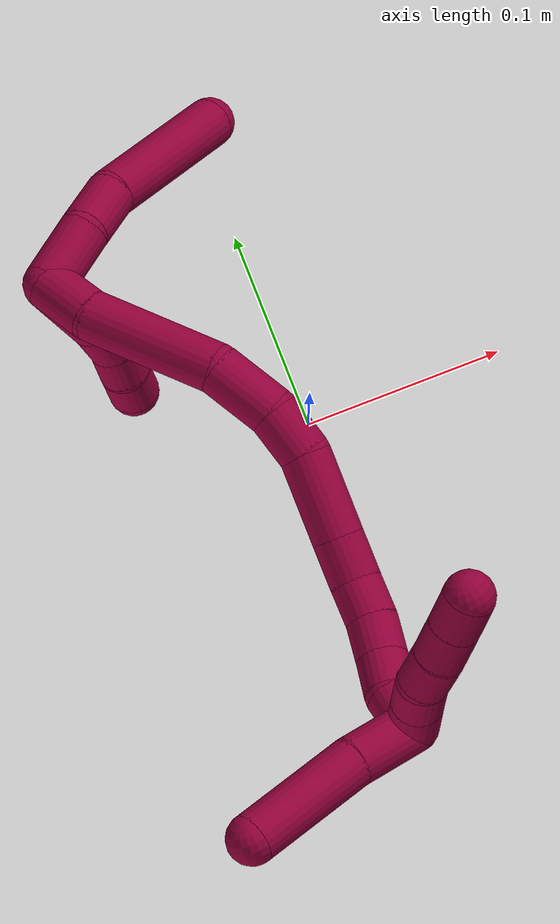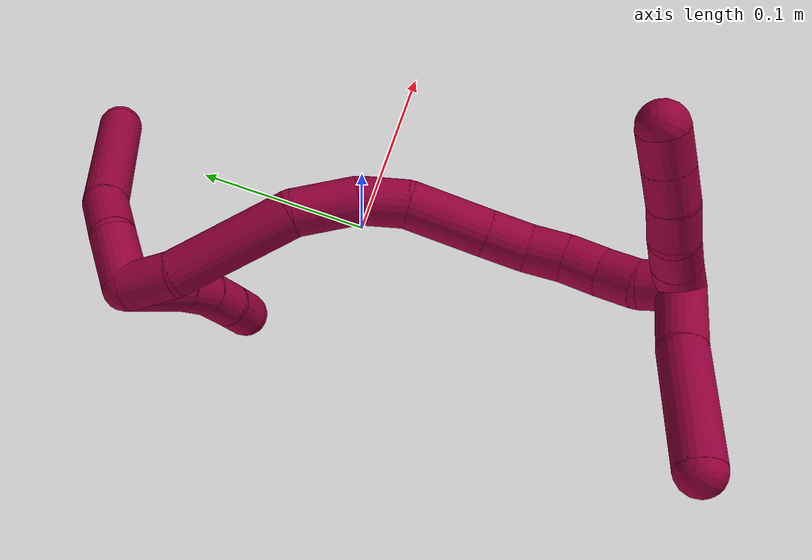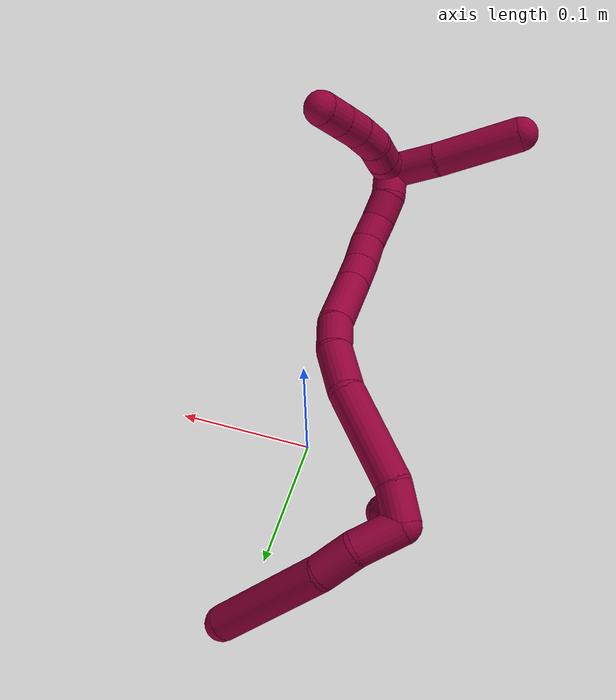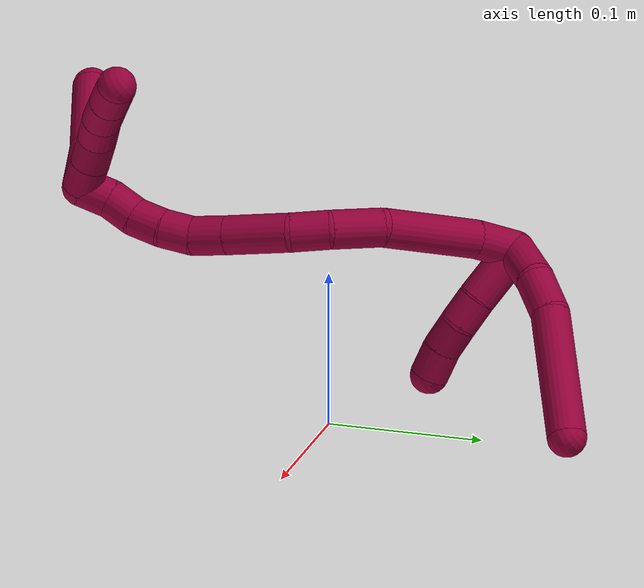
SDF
<sdf version="1.7">
 <world name="default">
  <model name="8">
   <static>0</static>
   <link name="8">
    <collision name="collision-cylinder-e_1_2_8">
     <pose>0.01397 0.008095 0.004612 -1.05296 0.982653 -0.603024</pose>
     <geometry><cylinder><radius>0.0125</radius><length>0.033583</length></cylinder></geometry>
     <surface>
      <friction><ode><mu>1.16</mu><mu2>1.16</mu2><slip1>0</slip1><slip2>0</slip2></ode></friction>
      <contact><ode><kp>1e+06</kp><kd>1</kd><max_vel>0</max_vel><min_depth>0.001</min_depth></ode></contact>
     </surface>
    </collision>
    <visual name="visual-cylinder-e_1_2_8">
     <pose>0.01397 0.008095 0.004612 -1.05296 0.982653 -0.603024</pose>
     <geometry><cylinder><radius>0.0125</radius><length>0.033583</length></cylinder></geometry>
     <material><ambient>0.584314 0 0.227451 1</ambient></material>
    </visual>
    <collision name="collision-cylinder-e_2_8_9">
     <pose>0.038323 0.025762 0.010429 -1.44544 0.822053 -0.733928</pose>
     <geometry><cylinder><radius>0.0125</radius><length>0.028347</length></cylinder></geometry>
     <surface>
      <friction><ode><mu>1.16</mu><mu2>1.16</mu2><slip1>0</slip1><slip2>0</slip2></ode></friction>
      <contact><ode><kp>1e+06</kp><kd>1</kd><max_vel>0</max_vel><min_depth>0.001</min_depth></ode></contact>
     </surface>
    </collision>
    <visual name="visual-cylinder-e_2_8_9">
     <pose>0.038323 0.025762 0.010429 -1.44544 0.822053 -0.733928</pose>
     <geometry><cylinder><radius>0.0125</radius><length>0.028347</length></cylinder></geometry>
     <material><ambient>0.584314 0 0.227451 1</ambient></material>
    </visual>
    <collision name="collision-cylinder-e_3_9_6">
     <pose>0.081696 0.063595 0.004419 -1.82082 0.846837 -1.05151</pose>
     <geometry><cylinder><radius>0.0125</radius><length>0.08807</length></cylinder></geometry>
     <surface>
      <friction><ode><mu>1.16</mu><mu2>1.16</mu2><slip1>0</slip1><slip2>0</slip2></ode></friction>
      <contact><ode><kp>1e+06</kp><kd>1</kd><max_vel>0</max_vel><min_depth>0.001</min_depth></ode></contact>
     </surface>
    </collision>
    <visual name="visual-cylinder-e_3_9_6">
     <pose>0.081696 0.063595 0.004419 -1.82082 0.846837 -1.05151</pose>
     <geometry><cylinder><radius>0.0125</radius><length>0.08807</length></cylinder></geometry>
     <material><ambient>0.584314 0 0.227451 1</ambient></material>
    </visual>
    <collision name="collision-cylinder-e_1_2_10">
     <pose>0.006699 0.005715 -0.017521 -2.8263 0.348648 -1.67305</pose>
     <geometry><cylinder><radius>0.0125</radius><length>0.039218</length></cylinder></geometry>
     <surface>
      <friction><ode><mu>1.16</mu><mu2>1.16</mu2><slip1>0</slip1><slip2>0</slip2></ode></friction>
      <contact><ode><kp>1e+06</kp><kd>1</kd><max_vel>0</max_vel><min_depth>0.001</min_depth></ode></contact>
     </surface>
    </collision>
    <visual name="visual-cylinder-e_1_2_10">
     <pose>0.006699 0.005715 -0.017521 -2.8263 0.348648 -1.67305</pose>
     <geometry><cylinder><radius>0.0125</radius><length>0.039218</length></cylinder></geometry>
     <material><ambient>0.584314 0 0.227451 1</ambient></material>
    </visual>
    <collision name="collision-cylinder-e_2_10_11">
     <pose>0.015694 0.015071 -0.044221 -2.76398 0.228453 -1.08144</pose>
     <geometry><cylinder><radius>0.0125</radius><length>0.020278</length></cylinder></geometry>
     <surface>
      <friction><ode><mu>1.16</mu><mu2>1.16</mu2><slip1>0</slip1><slip2>0</slip2></ode></friction>
      <contact><ode><kp>1e+06</kp><kd>1</kd><max_vel>0</max_vel><min_depth>0.001</min_depth></ode></contact>
     </surface>
    </collision>
    <visual name="visual-cylinder-e_2_10_11">
     <pose>0.015694 0.015071 -0.044221 -2.76398 0.228453 -1.08144</pose>
     <geometry><cylinder><radius>0.0125</radius><length>0.020278</length></cylinder></geometry>
     <material><ambient>0.584314 0 0.227451 1</ambient></material>
    </visual>
    <collision name="collision-cylinder-e_3_11_12">
     <pose>0.018294 0.022795 -0.062602 -2.72391 0.030211 -0.142325</pose>
     <geometry><cylinder><radius>0.0125</radius><length>0.020143</length></cylinder></geometry>
     <surface>
      <friction><ode><mu>1.16</mu><mu2>1.16</mu2><slip1>0</slip1><slip2>0</slip2></ode></friction>
      <contact><ode><kp>1e+06</kp><kd>1</kd><max_vel>0</max_vel><min_depth>0.001</min_depth></ode></contact>
     </surface>
    </collision>
    <visual name="visual-cylinder-e_3_11_12">
     <pose>0.018294 0.022795 -0.062602 -2.72391 0.030211 -0.142325</pose>
     <geometry><cylinder><radius>0.0125</radius><length>0.020143</length></cylinder></geometry>
     <material><ambient>0.584314 0 0.227451 1</ambient></material>
    </visual>
    <collision name="collision-cylinder-e_4_12_5">
     <pose>0.019187 0.032331 -0.080381 -2.5754 0.057845 -0.198245</pose>
     <geometry><cylinder><radius>0.0125</radius><length>0.020362</length></cylinder></geometry>
     <surface>
      <friction><ode><mu>1.16</mu><mu2>1.16</mu2><slip1>0</slip1><slip2>0</slip2></ode></friction>
      <contact><ode><kp>1e+06</kp><kd>1</kd><max_vel>0</max_vel><min_depth>0.001</min_depth></ode></contact>
     </surface>
    </collision>
    <visual name="visual-cylinder-e_4_12_5">
     <pose>0.019187 0.032331 -0.080381 -2.5754 0.057845 -0.198245</pose>
     <geometry><cylinder><radius>0.0125</radius><length>0.020362</length></cylinder></geometry>
     <material><ambient>0.584314 0 0.227451 1</ambient></material>
    </visual>
    <collision name="collision-cylinder-e_1_2_13">
     <pose>0.004918 -0.010736 -0.007156 2.15873 0.364168 0.662659</pose>
     <geometry><cylinder><radius>0.0125</radius><length>0.027615</length></cylinder></geometry>
     <surface>
      <friction><ode><mu>1.16</mu><mu2>1.16</mu2><slip1>0</slip1><slip2>0</slip2></ode></friction>
      <contact><ode><kp>1e+06</kp><kd>1</kd><max_vel>0</max_vel><min_depth>0.001</min_depth></ode></contact>
     </surface>
    </collision>
    <visual name="visual-cylinder-e_1_2_13">
     <pose>0.004918 -0.010736 -0.007156 2.15873 0.364168 0.662659</pose>
     <geometry><cylinder><radius>0.0125</radius><length>0.027615</length></cylinder></geometry>
     <material><ambient>0.584314 0 0.227451 1</ambient></material>
    </visual>
    <collision name="collision-cylinder-e_2_13_14">
     <pose>0.029488 -0.044615 -0.030905 2.1928 0.604045 1.09069</pose>
     <geometry><cylinder><radius>0.0125</radius><length>0.0692</length></cylinder></geometry>
     <surface>
      <friction><ode><mu>1.16</mu><mu2>1.16</mu2><slip1>0</slip1><slip2>0</slip2></ode></friction>
      <contact><ode><kp>1e+06</kp><kd>1</kd><max_vel>0</max_vel><min_depth>0.001</min_depth></ode></contact>
     </surface>
    </collision>
    <visual name="visual-cylinder-e_2_13_14">
     <pose>0.029488 -0.044615 -0.030905 2.1928 0.604045 1.09069</pose>
     <geometry><cylinder><radius>0.0125</radius><length>0.0692</length></cylinder></geometry>
     <material><ambient>0.584314 0 0.227451 1</ambient></material>
    </visual>
    <collision name="collision-cylinder-e_3_14_15">
     <pose>0.055899 -0.077136 -0.059722 2.48724 0.413441 1.10703</pose>
     <geometry><cylinder><radius>0.0125</radius><length>0.033648</length></cylinder></geometry>
     <surface>
      <friction><ode><mu>1.16</mu><mu2>1.16</mu2><slip1>0</slip1><slip2>0</slip2></ode></friction>
      <contact><ode><kp>1e+06</kp><kd>1</kd><max_vel>0</max_vel><min_depth>0.001</min_depth></ode></contact>
     </surface>
    </collision>
    <visual name="visual-cylinder-e_3_14_15">
     <pose>0.055899 -0.077136 -0.059722 2.48724 0.413441 1.10703</pose>
     <geometry><cylinder><radius>0.0125</radius><length>0.033648</length></cylinder></geometry>
     <material><ambient>0.584314 0 0.227451 1</ambient></material>
    </visual>
    <collision name="collision-cylinder-e_4_15_16">
     <pose>0.064778 -0.092617 -0.082479 2.6164 0.172405 0.622101</pose>
     <geometry><cylinder><radius>0.0125</radius><length>0.024713</length></cylinder></geometry>
     <surface>
      <friction><ode><mu>1.16</mu><mu2>1.16</mu2><slip1>0</slip1><slip2>0</slip2></ode></friction>
      <contact><ode><kp>1e+06</kp><kd>1</kd><max_vel>0</max_vel><min_depth>0.001</min_depth></ode></contact>
     </surface>
    </collision>
    <visual name="visual-cylinder-e_4_15_16">
     <pose>0.064778 -0.092617 -0.082479 2.6164 0.172405 0.622101</pose>
     <geometry><cylinder><radius>0.0125</radius><length>0.024713</length></cylinder></geometry>
     <material><ambient>0.584314 0 0.227451 1</ambient></material>
    </visual>
    <collision name="collision-cylinder-e_5_16_17">
     <pose>0.064837 -0.108011 -0.111802 2.6824 -0.098011 -0.413686</pose>
     <geometry><cylinder><radius>0.0125</radius><length>0.042125</length></cylinder></geometry>
     <surface>
      <friction><ode><mu>1.16</mu><mu2>1.16</mu2><slip1>0</slip1><slip2>0</slip2></ode></friction>
      <contact><ode><kp>1e+06</kp><kd>1</kd><max_vel>0</max_vel><min_depth>0.001</min_depth></ode></contact>
     </surface>
    </collision>
    <visual name="visual-cylinder-e_5_16_17">
     <pose>0.064837 -0.108011 -0.111802 2.6824 -0.098011 -0.413686</pose>
     <geometry><cylinder><radius>0.0125</radius><length>0.042125</length></cylinder></geometry>
     <material><ambient>0.584314 0 0.227451 1</ambient></material>
    </visual>
    <collision name="collision-cylinder-e_6_17_18">
     <pose>0.061706 -0.122526 -0.140596 2.66037 -0.094484 -0.380696</pose>
     <geometry><cylinder><radius>0.0125</radius><length>0.022674</length></cylinder></geometry>
     <surface>
      <friction><ode><mu>1.16</mu><mu2>1.16</mu2><slip1>0</slip1><slip2>0</slip2></ode></friction>
      <contact><ode><kp>1e+06</kp><kd>1</kd><max_vel>0</max_vel><min_depth>0.001</min_depth></ode></contact>
     </surface>
    </collision>
    <visual name="visual-cylinder-e_6_17_18">
     <pose>0.061706 -0.122526 -0.140596 2.66037 -0.094484 -0.380696</pose>
     <geometry><cylinder><radius>0.0125</radius><length>0.022674</length></cylinder></geometry>
     <material><ambient>0.584314 0 0.227451 1</ambient></material>
    </visual>
    <collision name="collision-cylinder-e_7_18_19">
     <pose>0.059594 -0.13461 -0.157816 2.38143 -0.104321 -0.259889</pose>
     <geometry><cylinder><radius>0.0125</radius><length>0.020021</length></cylinder></geometry>
     <surface>
      <friction><ode><mu>1.16</mu><mu2>1.16</mu2><slip1>0</slip1><slip2>0</slip2></ode></friction>
      <contact><ode><kp>1e+06</kp><kd>1</kd><max_vel>0</max_vel><min_depth>0.001</min_depth></ode></contact>
     </surface>
    </collision>
    <visual name="visual-cylinder-e_7_18_19">
     <pose>0.059594 -0.13461 -0.157816 2.38143 -0.104321 -0.259889</pose>
     <geometry><cylinder><radius>0.0125</radius><length>0.020021</length></cylinder></geometry>
     <material><ambient>0.584314 0 0.227451 1</ambient></material>
    </visual>
    <collision name="collision-cylinder-e_8_19_20">
     <pose>0.056171 -0.148731 -0.171484 2.29725 -0.240358 -0.525275</pose>
     <geometry><cylinder><radius>0.0125</radius><length>0.020002</length></cylinder></geometry>
     <surface>
      <friction><ode><mu>1.16</mu><mu2>1.16</mu2><slip1>0</slip1><slip2>0</slip2></ode></friction>
      <contact><ode><kp>1e+06</kp><kd>1</kd><max_vel>0</max_vel><min_depth>0.001</min_depth></ode></contact>
     </surface>
    </collision>
    <visual name="visual-cylinder-e_8_19_20">
     <pose>0.056171 -0.148731 -0.171484 2.29725 -0.240358 -0.525275</pose>
     <geometry><cylinder><radius>0.0125</radius><length>0.020002</length></cylinder></geometry>
     <material><ambient>0.584314 0 0.227451 1</ambient></material>
    </visual>
    <collision name="collision-cylinder-e_9_20_21">
     <pose>0.051188 -0.164589 -0.182333 2.04363 -0.263232 -0.426254</pose>
     <geometry><cylinder><radius>0.0125</radius><length>0.020001</length></cylinder></geometry>
     <surface>
      <friction><ode><mu>1.16</mu><mu2>1.16</mu2><slip1>0</slip1><slip2>0</slip2></ode></friction>
      <contact><ode><kp>1e+06</kp><kd>1</kd><max_vel>0</max_vel><min_depth>0.001</min_depth></ode></contact>
     </surface>
    </collision>
    <visual name="visual-cylinder-e_9_20_21">
     <pose>0.051188 -0.164589 -0.182333 2.04363 -0.263232 -0.426254</pose>
     <geometry><cylinder><radius>0.0125</radius><length>0.020001</length></cylinder></geometry>
     <material><ambient>0.584314 0 0.227451 1</ambient></material>
    </visual>
    <collision name="collision-cylinder-e_10_21_1">
     <pose>0.049153 -0.181519 -0.19223 2.15413 0.056694 0.105272</pose>
     <geometry><cylinder><radius>0.0125</radius><length>0.02</length></cylinder></geometry>
     <surface>
      <friction><ode><mu>1.16</mu><mu2>1.16</mu2><slip1>0</slip1><slip2>0</slip2></ode></friction>
      <contact><ode><kp>1e+06</kp><kd>1</kd><max_vel>0</max_vel><min_depth>0.001</min_depth></ode></contact>
     </surface>
    </collision>
    <visual name="visual-cylinder-e_10_21_1">
     <pose>0.049153 -0.181519 -0.19223 2.15413 0.056694 0.105272</pose>
     <geometry><cylinder><radius>0.0125</radius><length>0.02</length></cylinder></geometry>
     <material><ambient>0.584314 0 0.227451 1</ambient></material>
    </visual>
    <collision name="collision-cylinder-e_1_1_22">
     <pose>0.052204 -0.19529 -0.189714 0.596155 0.251065 0.077504</pose>
     <geometry><cylinder><radius>0.0125</radius><length>0.02</length></cylinder></geometry>
     <surface>
      <friction><ode><mu>1.16</mu><mu2>1.16</mu2><slip1>0</slip1><slip2>0</slip2></ode></friction>
      <contact><ode><kp>1e+06</kp><kd>1</kd><max_vel>0</max_vel><min_depth>0.001</min_depth></ode></contact>
     </surface>
    </collision>
    <visual name="visual-cylinder-e_1_1_22">
     <pose>0.052204 -0.19529 -0.189714 0.596155 0.251065 0.077504</pose>
     <geometry><cylinder><radius>0.0125</radius><length>0.02</length></cylinder></geometry>
     <material><ambient>0.584314 0 0.227451 1</ambient></material>
    </visual>
    <collision name="collision-cylinder-e_2_22_23">
     <pose>0.057017 -0.206553 -0.17391 0.642041 0.235046 0.07848</pose>
     <geometry><cylinder><radius>0.0125</radius><length>0.02</length></cylinder></geometry>
     <surface>
      <friction><ode><mu>1.16</mu><mu2>1.16</mu2><slip1>0</slip1><slip2>0</slip2></ode></friction>
      <contact><ode><kp>1e+06</kp><kd>1</kd><max_vel>0</max_vel><min_depth>0.001</min_depth></ode></contact>
     </surface>
    </collision>
    <visual name="visual-cylinder-e_2_22_23">
     <pose>0.057017 -0.206553 -0.17391 0.642041 0.235046 0.07848</pose>
     <geometry><cylinder><radius>0.0125</radius><length>0.02</length></cylinder></geometry>
     <material><ambient>0.584314 0 0.227451 1</ambient></material>
    </visual>
    <collision name="collision-cylinder-e_3_23_24">
     <pose>0.064438 -0.217487 -0.159197 0.635831 0.534316 0.179653</pose>
     <geometry><cylinder><radius>0.0125</radius><length>0.02</length></cylinder></geometry>
     <surface>
      <friction><ode><mu>1.16</mu><mu2>1.16</mu2><slip1>0</slip1><slip2>0</slip2></ode></friction>
      <contact><ode><kp>1e+06</kp><kd>1</kd><max_vel>0</max_vel><min_depth>0.001</min_depth></ode></contact>
     </surface>
    </collision>
    <visual name="visual-cylinder-e_3_23_24">
     <pose>0.064438 -0.217487 -0.159197 0.635831 0.534316 0.179653</pose>
     <geometry><cylinder><radius>0.0125</radius><length>0.02</length></cylinder></geometry>
     <material><ambient>0.584314 0 0.227451 1</ambient></material>
    </visual>
    <collision name="collision-cylinder-e_4_24_25">
     <pose>0.074873 -0.226756 -0.144912 0.514234 0.56361 0.151952</pose>
     <geometry><cylinder><radius>0.0125</radius><length>0.02</length></cylinder></geometry>
     <surface>
      <friction><ode><mu>1.16</mu><mu2>1.16</mu2><slip1>0</slip1><slip2>0</slip2></ode></friction>
      <contact><ode><kp>1e+06</kp><kd>1</kd><max_vel>0</max_vel><min_depth>0.001</min_depth></ode></contact>
     </surface>
    </collision>
    <visual name="visual-cylinder-e_4_24_25">
     <pose>0.074873 -0.226756 -0.144912 0.514234 0.56361 0.151952</pose>
     <geometry><cylinder><radius>0.0125</radius><length>0.02</length></cylinder></geometry>
     <material><ambient>0.584314 0 0.227451 1</ambient></material>
    </visual>
    <collision name="collision-cylinder-e_5_25_4">
     <pose>0.085493 -0.235003 -0.130107 0.502247 0.555914 0.146143</pose>
     <geometry><cylinder><radius>0.0125</radius><length>0.02</length></cylinder></geometry>
     <surface>
      <friction><ode><mu>1.16</mu><mu2>1.16</mu2><slip1>0</slip1><slip2>0</slip2></ode></friction>
      <contact><ode><kp>1e+06</kp><kd>1</kd><max_vel>0</max_vel><min_depth>0.001</min_depth></ode></contact>
     </surface>
    </collision>
    <visual name="visual-cylinder-e_5_25_4">
     <pose>0.085493 -0.235003 -0.130107 0.502247 0.555914 0.146143</pose>
     <geometry><cylinder><radius>0.0125</radius><length>0.02</length></cylinder></geometry>
     <material><ambient>0.584314 0 0.227451 1</ambient></material>
    </visual>
    <collision name="collision-cylinder-e_1_1_26">
     <pose>0.032731 -0.19608 -0.195098 1.17102 -1.19201 -0.845302</pose>
     <geometry><cylinder><radius>0.0125</radius><length>0.036569</length></cylinder></geometry>
     <surface>
      <friction><ode><mu>1.16</mu><mu2>1.16</mu2><slip1>0</slip1><slip2>0</slip2></ode></friction>
      <contact><ode><kp>1e+06</kp><kd>1</kd><max_vel>0</max_vel><min_depth>0.001</min_depth></ode></contact>
     </surface>
    </collision>
    <visual name="visual-cylinder-e_1_1_26">
     <pose>0.032731 -0.19608 -0.195098 1.17102 -1.19201 -0.845302</pose>
     <geometry><cylinder><radius>0.0125</radius><length>0.036569</length></cylinder></geometry>
     <material><ambient>0.584314 0 0.227451 1</ambient></material>
    </visual>
    <collision name="collision-cylinder-e_2_26_3">
     <pose>-0.013566 -0.214354 -0.191121 1.45958 -1.17867 -1.07802</pose>
     <geometry><cylinder><radius>0.0125</radius><length>0.063431</length></cylinder></geometry>
     <surface>
      <friction><ode><mu>1.16</mu><mu2>1.16</mu2><slip1>0</slip1><slip2>0</slip2></ode></friction>
      <contact><ode><kp>1e+06</kp><kd>1</kd><max_vel>0</max_vel><min_depth>0.001</min_depth></ode></contact>
     </surface>
    </collision>
    <visual name="visual-cylinder-e_2_26_3">
     <pose>-0.013566 -0.214354 -0.191121 1.45958 -1.17867 -1.07802</pose>
     <geometry><cylinder><radius>0.0125</radius><length>0.063431</length></cylinder></geometry>
     <material><ambient>0.584314 0 0.227451 1</ambient></material>
    </visual>
    <collision name="collision-sphere-3">
     <pose>-0.042874 -0.226399 -0.189776 0 -0 0</pose>
     <geometry><sphere><radius>0.0125</radius></sphere></geometry>
     <surface>
      <friction><ode><mu>1.16</mu><mu2>1.16</mu2><slip1>0</slip1><slip2>0</slip2></ode></friction>
      <contact><ode><kp>1e+06</kp><kd>1</kd><max_vel>0</max_vel><min_depth>0.001</min_depth></ode></contact>
     </surface>
    </collision>
    <visual name="visual-sphere-3">
     <pose>-0.042874 -0.226399 -0.189776 0 -0 0</pose>
     <geometry><sphere><radius>0.0125</radius></sphere></geometry>
     <material><ambient>0.584314 0 0.227451 1</ambient></material>
    </visual>
    <collision name="collision-sphere-26">
     <pose>0.015742 -0.202308 -0.192466 0 -0 0</pose>
     <geometry><sphere><radius>0.0125</radius></sphere></geometry>
     <surface>
      <friction><ode><mu>1.16</mu><mu2>1.16</mu2><slip1>0</slip1><slip2>0</slip2></ode></friction>
      <contact><ode><kp>1e+06</kp><kd>1</kd><max_vel>0</max_vel><min_depth>0.001</min_depth></ode></contact>
     </surface>
    </collision>
    <visual name="visual-sphere-26">
     <pose>0.015742 -0.202308 -0.192466 0 -0 0</pose>
     <geometry><sphere><radius>0.0125</radius></sphere></geometry>
     <material><ambient>0.584314 0 0.227451 1</ambient></material>
    </visual>
    <collision name="collision-sphere-4">
     <pose>0.09077 -0.239092 -0.122662 0 -0 0</pose>
     <geometry><sphere><radius>0.0125</radius></sphere></geometry>
     <surface>
      <friction><ode><mu>1.16</mu><mu2>1.16</mu2><slip1>0</slip1><slip2>0</slip2></ode></friction>
      <contact><ode><kp>1e+06</kp><kd>1</kd><max_vel>0</max_vel><min_depth>0.001</min_depth></ode></contact>
     </surface>
    </collision>
    <visual name="visual-sphere-4">
     <pose>0.09077 -0.239092 -0.122662 0 -0 0</pose>
     <geometry><sphere><radius>0.0125</radius></sphere></geometry>
     <material><ambient>0.584314 0 0.227451 1</ambient></material>
    </visual>
    <collision name="collision-sphere-25">
     <pose>0.080216 -0.230914 -0.137552 0 -0 0</pose>
     <geometry><sphere><radius>0.0125</radius></sphere></geometry>
     <surface>
      <friction><ode><mu>1.16</mu><mu2>1.16</mu2><slip1>0</slip1><slip2>0</slip2></ode></friction>
      <contact><ode><kp>1e+06</kp><kd>1</kd><max_vel>0</max_vel><min_depth>0.001</min_depth></ode></contact>
     </surface>
    </collision>
    <visual name="visual-sphere-25">
     <pose>0.080216 -0.230914 -0.137552 0 -0 0</pose>
     <geometry><sphere><radius>0.0125</radius></sphere></geometry>
     <material><ambient>0.584314 0 0.227451 1</ambient></material>
    </visual>
    <collision name="collision-sphere-24">
     <pose>0.069531 -0.222598 -0.152272 0 -0 0</pose>
     <geometry><sphere><radius>0.0125</radius></sphere></geometry>
     <surface>
      <friction><ode><mu>1.16</mu><mu2>1.16</mu2><slip1>0</slip1><slip2>0</slip2></ode></friction>
      <contact><ode><kp>1e+06</kp><kd>1</kd><max_vel>0</max_vel><min_depth>0.001</min_depth></ode></contact>
     </surface>
    </collision>
    <visual name="visual-sphere-24">
     <pose>0.069531 -0.222598 -0.152272 0 -0 0</pose>
     <geometry><sphere><radius>0.0125</radius></sphere></geometry>
     <material><ambient>0.584314 0 0.227451 1</ambient></material>
    </visual>
    <collision name="collision-sphere-23">
     <pose>0.059346 -0.212376 -0.166121 0 -0 0</pose>
     <geometry><sphere><radius>0.0125</radius></sphere></geometry>
     <surface>
      <friction><ode><mu>1.16</mu><mu2>1.16</mu2><slip1>0</slip1><slip2>0</slip2></ode></friction>
      <contact><ode><kp>1e+06</kp><kd>1</kd><max_vel>0</max_vel><min_depth>0.001</min_depth></ode></contact>
     </surface>
    </collision>
    <visual name="visual-sphere-23">
     <pose>0.059346 -0.212376 -0.166121 0 -0 0</pose>
     <geometry><sphere><radius>0.0125</radius></sphere></geometry>
     <material><ambient>0.584314 0 0.227451 1</ambient></material>
    </visual>
    <collision name="collision-sphere-22">
     <pose>0.054688 -0.200729 -0.181698 0 -0 0</pose>
     <geometry><sphere><radius>0.0125</radius></sphere></geometry>
     <surface>
      <friction><ode><mu>1.16</mu><mu2>1.16</mu2><slip1>0</slip1><slip2>0</slip2></ode></friction>
      <contact><ode><kp>1e+06</kp><kd>1</kd><max_vel>0</max_vel><min_depth>0.001</min_depth></ode></contact>
     </surface>
    </collision>
    <visual name="visual-sphere-22">
     <pose>0.054688 -0.200729 -0.181698 0 -0 0</pose>
     <geometry><sphere><radius>0.0125</radius></sphere></geometry>
     <material><ambient>0.584314 0 0.227451 1</ambient></material>
    </visual>
    <collision name="collision-sphere-1">
     <pose>0.049719 -0.189852 -0.197729 0 -0 0</pose>
     <geometry><sphere><radius>0.0125</radius></sphere></geometry>
     <surface>
      <friction><ode><mu>1.16</mu><mu2>1.16</mu2><slip1>0</slip1><slip2>0</slip2></ode></friction>
      <contact><ode><kp>1e+06</kp><kd>1</kd><max_vel>0</max_vel><min_depth>0.001</min_depth></ode></contact>
     </surface>
    </collision>
    <visual name="visual-sphere-1">
     <pose>0.049719 -0.189852 -0.197729 0 -0 0</pose>
     <geometry><sphere><radius>0.0125</radius></sphere></geometry>
     <material><ambient>0.584314 0 0.227451 1</ambient></material>
    </visual>
    <collision name="collision-sphere-21">
     <pose>0.048586 -0.173186 -0.186731 0 -0 0</pose>
     <geometry><sphere><radius>0.0125</radius></sphere></geometry>
     <surface>
      <friction><ode><mu>1.16</mu><mu2>1.16</mu2><slip1>0</slip1><slip2>0</slip2></ode></friction>
      <contact><ode><kp>1e+06</kp><kd>1</kd><max_vel>0</max_vel><min_depth>0.001</min_depth></ode></contact>
     </surface>
    </collision>
    <visual name="visual-sphere-21">
     <pose>0.048586 -0.173186 -0.186731 0 -0 0</pose>
     <geometry><sphere><radius>0.0125</radius></sphere></geometry>
     <material><ambient>0.584314 0 0.227451 1</ambient></material>
    </visual>
    <collision name="collision-sphere-11">
     <pose>0.01799 0.018712 -0.053401 0 -0 0</pose>
     <geometry><sphere><radius>0.0125</radius></sphere></geometry>
     <surface>
      <friction><ode><mu>1.16</mu><mu2>1.16</mu2><slip1>0</slip1><slip2>0</slip2></ode></friction>
      <contact><ode><kp>1e+06</kp><kd>1</kd><max_vel>0</max_vel><min_depth>0.001</min_depth></ode></contact>
     </surface>
    </collision>
    <visual name="visual-sphere-11">
     <pose>0.01799 0.018712 -0.053401 0 -0 0</pose>
     <geometry><sphere><radius>0.0125</radius></sphere></geometry>
     <material><ambient>0.584314 0 0.227451 1</ambient></material>
    </visual>
    <collision name="collision-sphere-10">
     <pose>0.013398 0.01143 -0.035041 0 -0 0</pose>
     <geometry><sphere><radius>0.0125</radius></sphere></geometry>
     <surface>
      <friction><ode><mu>1.16</mu><mu2>1.16</mu2><slip1>0</slip1><slip2>0</slip2></ode></friction>
      <contact><ode><kp>1e+06</kp><kd>1</kd><max_vel>0</max_vel><min_depth>0.001</min_depth></ode></contact>
     </surface>
    </collision>
    <visual name="visual-sphere-10">
     <pose>0.013398 0.01143 -0.035041 0 -0 0</pose>
     <geometry><sphere><radius>0.0125</radius></sphere></geometry>
     <material><ambient>0.584314 0 0.227451 1</ambient></material>
    </visual>
    <collision name="collision-sphere-6">
     <pose>0.114687 0.091854 -0.002797 0 -0 0</pose>
     <geometry><sphere><radius>0.0125</radius></sphere></geometry>
     <surface>
      <friction><ode><mu>1.16</mu><mu2>1.16</mu2><slip1>0</slip1><slip2>0</slip2></ode></friction>
      <contact><ode><kp>1e+06</kp><kd>1</kd><max_vel>0</max_vel><min_depth>0.001</min_depth></ode></contact>
     </surface>
    </collision>
    <visual name="visual-sphere-6">
     <pose>0.114687 0.091854 -0.002797 0 -0 0</pose>
     <geometry><sphere><radius>0.0125</radius></sphere></geometry>
     <material><ambient>0.584314 0 0.227451 1</ambient></material>
    </visual>
    <collision name="collision-sphere-9">
     <pose>0.048706 0.035335 0.011636 0 -0 0</pose>
     <geometry><sphere><radius>0.0125</radius></sphere></geometry>
     <surface>
      <friction><ode><mu>1.16</mu><mu2>1.16</mu2><slip1>0</slip1><slip2>0</slip2></ode></friction>
      <contact><ode><kp>1e+06</kp><kd>1</kd><max_vel>0</max_vel><min_depth>0.001</min_depth></ode></contact>
     </surface>
    </collision>
    <visual name="visual-sphere-9">
     <pose>0.048706 0.035335 0.011636 0 -0 0</pose>
     <geometry><sphere><radius>0.0125</radius></sphere></geometry>
     <material><ambient>0.584314 0 0.227451 1</ambient></material>
    </visual>
    <collision name="collision-sphere-2">
     <geometry><sphere><radius>0.0125</radius></sphere></geometry>
     <surface>
      <friction><ode><mu>1.16</mu><mu2>1.16</mu2><slip1>0</slip1><slip2>0</slip2></ode></friction>
      <contact><ode><kp>1e+06</kp><kd>1</kd><max_vel>0</max_vel><min_depth>0.001</min_depth></ode></contact>
     </surface>
    </collision>
    <visual name="visual-sphere-2">
     <geometry><sphere><radius>0.0125</radius></sphere></geometry>
     <material><ambient>0.584314 0 0.227451 1</ambient></material>
    </visual>
    <collision name="collision-sphere-19">
     <pose>0.058552 -0.14147 -0.165032 0 -0 0</pose>
     <geometry><sphere><radius>0.0125</radius></sphere></geometry>
     <surface>
      <friction><ode><mu>1.16</mu><mu2>1.16</mu2><slip1>0</slip1><slip2>0</slip2></ode></friction>
      <contact><ode><kp>1e+06</kp><kd>1</kd><max_vel>0</max_vel><min_depth>0.001</min_depth></ode></contact>
     </surface>
    </collision>
    <visual name="visual-sphere-19">
     <pose>0.058552 -0.14147 -0.165032 0 -0 0</pose>
     <geometry><sphere><radius>0.0125</radius></sphere></geometry>
     <material><ambient>0.584314 0 0.227451 1</ambient></material>
    </visual>
    <collision name="collision-sphere-8">
     <pose>0.02794 0.016189 0.009223 0 -0 0</pose>
     <geometry><sphere><radius>0.0125</radius></sphere></geometry>
     <surface>
      <friction><ode><mu>1.16</mu><mu2>1.16</mu2><slip1>0</slip1><slip2>0</slip2></ode></friction>
      <contact><ode><kp>1e+06</kp><kd>1</kd><max_vel>0</max_vel><min_depth>0.001</min_depth></ode></contact>
     </surface>
    </collision>
    <visual name="visual-sphere-8">
     <pose>0.02794 0.016189 0.009223 0 -0 0</pose>
     <geometry><sphere><radius>0.0125</radius></sphere></geometry>
     <material><ambient>0.584314 0 0.227451 1</ambient></material>
    </visual>
    <collision name="collision-sphere-12">
     <pose>0.018599 0.026879 -0.071804 0 -0 0</pose>
     <geometry><sphere><radius>0.0125</radius></sphere></geometry>
     <surface>
      <friction><ode><mu>1.16</mu><mu2>1.16</mu2><slip1>0</slip1><slip2>0</slip2></ode></friction>
      <contact><ode><kp>1e+06</kp><kd>1</kd><max_vel>0</max_vel><min_depth>0.001</min_depth></ode></contact>
     </surface>
    </collision>
    <visual name="visual-sphere-12">
     <pose>0.018599 0.026879 -0.071804 0 -0 0</pose>
     <geometry><sphere><radius>0.0125</radius></sphere></geometry>
     <material><ambient>0.584314 0 0.227451 1</ambient></material>
    </visual>
    <collision name="collision-sphere-5">
     <pose>0.019776 0.037783 -0.088959 0 -0 0</pose>
     <geometry><sphere><radius>0.0125</radius></sphere></geometry>
     <surface>
      <friction><ode><mu>1.16</mu><mu2>1.16</mu2><slip1>0</slip1><slip2>0</slip2></ode></friction>
      <contact><ode><kp>1e+06</kp><kd>1</kd><max_vel>0</max_vel><min_depth>0.001</min_depth></ode></contact>
     </surface>
    </collision>
    <visual name="visual-sphere-5">
     <pose>0.019776 0.037783 -0.088959 0 -0 0</pose>
     <geometry><sphere><radius>0.0125</radius></sphere></geometry>
     <material><ambient>0.584314 0 0.227451 1</ambient></material>
    </visual>
    <collision name="collision-sphere-13">
     <pose>0.009836 -0.021471 -0.014312 0 -0 0</pose>
     <geometry><sphere><radius>0.0125</radius></sphere></geometry>
     <surface>
      <friction><ode><mu>1.16</mu><mu2>1.16</mu2><slip1>0</slip1><slip2>0</slip2></ode></friction>
      <contact><ode><kp>1e+06</kp><kd>1</kd><max_vel>0</max_vel><min_depth>0.001</min_depth></ode></contact>
     </surface>
    </collision>
    <visual name="visual-sphere-13">
     <pose>0.009836 -0.021471 -0.014312 0 -0 0</pose>
     <geometry><sphere><radius>0.0125</radius></sphere></geometry>
     <material><ambient>0.584314 0 0.227451 1</ambient></material>
    </visual>
    <collision name="collision-sphere-14">
     <pose>0.04914 -0.067759 -0.047498 0 -0 0</pose>
     <geometry><sphere><radius>0.0125</radius></sphere></geometry>
     <surface>
      <friction><ode><mu>1.16</mu><mu2>1.16</mu2><slip1>0</slip1><slip2>0</slip2></ode></friction>
      <contact><ode><kp>1e+06</kp><kd>1</kd><max_vel>0</max_vel><min_depth>0.001</min_depth></ode></contact>
     </surface>
    </collision>
    <visual name="visual-sphere-14">
     <pose>0.04914 -0.067759 -0.047498 0 -0 0</pose>
     <geometry><sphere><radius>0.0125</radius></sphere></geometry>
     <material><ambient>0.584314 0 0.227451 1</ambient></material>
    </visual>
    <collision name="collision-sphere-15">
     <pose>0.062658 -0.086513 -0.071946 0 -0 0</pose>
     <geometry><sphere><radius>0.0125</radius></sphere></geometry>
     <surface>
      <friction><ode><mu>1.16</mu><mu2>1.16</mu2><slip1>0</slip1><slip2>0</slip2></ode></friction>
      <contact><ode><kp>1e+06</kp><kd>1</kd><max_vel>0</max_vel><min_depth>0.001</min_depth></ode></contact>
     </surface>
    </collision>
    <visual name="visual-sphere-15">
     <pose>0.062658 -0.086513 -0.071946 0 -0 0</pose>
     <geometry><sphere><radius>0.0125</radius></sphere></geometry>
     <material><ambient>0.584314 0 0.227451 1</ambient></material>
    </visual>
    <collision name="collision-sphere-16">
     <pose>0.066898 -0.09872 -0.093012 0 -0 0</pose>
     <geometry><sphere><radius>0.0125</radius></sphere></geometry>
     <surface>
      <friction><ode><mu>1.16</mu><mu2>1.16</mu2><slip1>0</slip1><slip2>0</slip2></ode></friction>
      <contact><ode><kp>1e+06</kp><kd>1</kd><max_vel>0</max_vel><min_depth>0.001</min_depth></ode></contact>
     </surface>
    </collision>
    <visual name="visual-sphere-16">
     <pose>0.066898 -0.09872 -0.093012 0 -0 0</pose>
     <geometry><sphere><radius>0.0125</radius></sphere></geometry>
     <material><ambient>0.584314 0 0.227451 1</ambient></material>
    </visual>
    <collision name="collision-sphere-17">
     <pose>0.062776 -0.117302 -0.130592 0 -0 0</pose>
     <geometry><sphere><radius>0.0125</radius></sphere></geometry>
     <surface>
      <friction><ode><mu>1.16</mu><mu2>1.16</mu2><slip1>0</slip1><slip2>0</slip2></ode></friction>
      <contact><ode><kp>1e+06</kp><kd>1</kd><max_vel>0</max_vel><min_depth>0.001</min_depth></ode></contact>
     </surface>
    </collision>
    <visual name="visual-sphere-17">
     <pose>0.062776 -0.117302 -0.130592 0 -0 0</pose>
     <geometry><sphere><radius>0.0125</radius></sphere></geometry>
     <material><ambient>0.584314 0 0.227451 1</ambient></material>
    </visual>
    <collision name="collision-sphere-18">
     <pose>0.060637 -0.12775 -0.150601 0 -0 0</pose>
     <geometry><sphere><radius>0.0125</radius></sphere></geometry>
     <surface>
      <friction><ode><mu>1.16</mu><mu2>1.16</mu2><slip1>0</slip1><slip2>0</slip2></ode></friction>
      <contact><ode><kp>1e+06</kp><kd>1</kd><max_vel>0</max_vel><min_depth>0.001</min_depth></ode></contact>
     </surface>
    </collision>
    <visual name="visual-sphere-18">
     <pose>0.060637 -0.12775 -0.150601 0 -0 0</pose>
     <geometry><sphere><radius>0.0125</radius></sphere></geometry>
     <material><ambient>0.584314 0 0.227451 1</ambient></material>
    </visual>
    <collision name="collision-sphere-20">
     <pose>0.05379 -0.155993 -0.177936 0 -0 0</pose>
     <geometry><sphere><radius>0.0125</radius></sphere></geometry>
     <surface>
      <friction><ode><mu>1.16</mu><mu2>1.16</mu2><slip1>0</slip1><slip2>0</slip2></ode></friction>
      <contact><ode><kp>1e+06</kp><kd>1</kd><max_vel>0</max_vel><min_depth>0.001</min_depth></ode></contact>
     </surface>
    </collision>
    <visual name="visual-sphere-20">
     <pose>0.05379 -0.155993 -0.177936 0 -0 0</pose>
     <geometry><sphere><radius>0.0125</radius></sphere></geometry>
     <material><ambient>0.584314 0 0.227451 1</ambient></material>
    </visual>
    <inertial>
     <pose>0.041626 -0.083103 -0.089625 0 -0 0</pose>
     <mass>0.75</mass>
     <inertia><ixx>5e-05</ixx><ixy>0</ixy><ixz>0</ixz><iyy>1.4e-05</iyy><iyz>0</iyz><izz>-6.2e-05</izz></inertia>
    </inertial>
   </link>
   <pose>-0.096408 0.094854 0.093656 -0.970599 0.042613 0.113488</pose>
  </model>
 </world>
</sdf>
